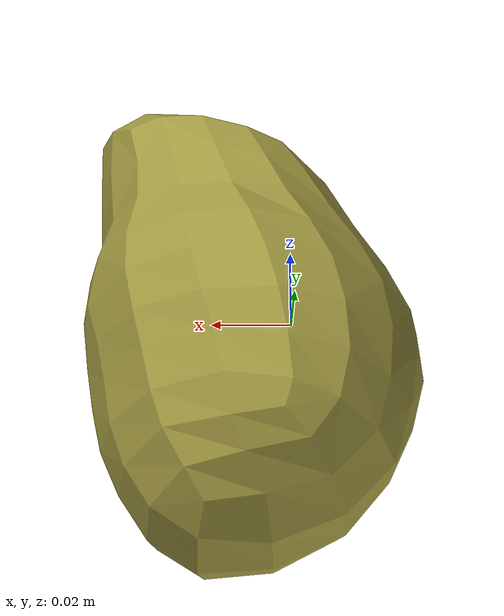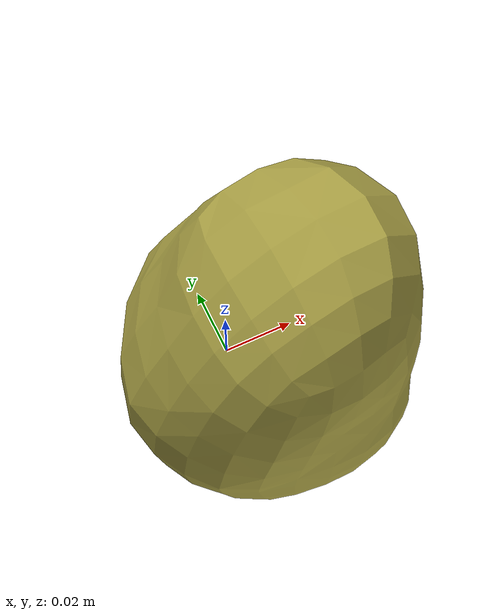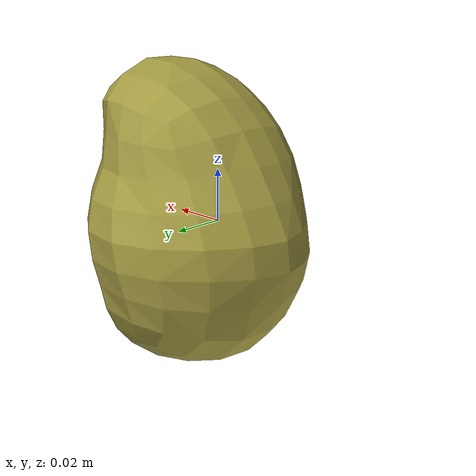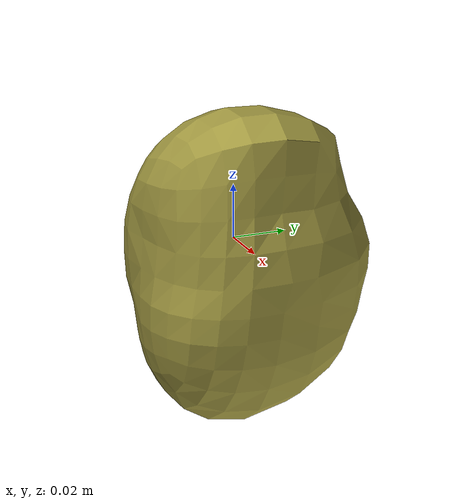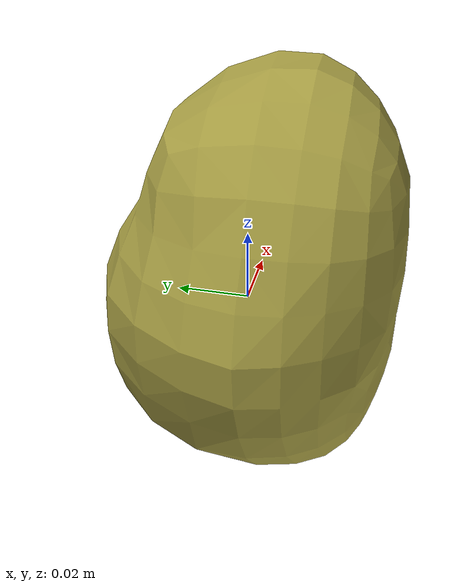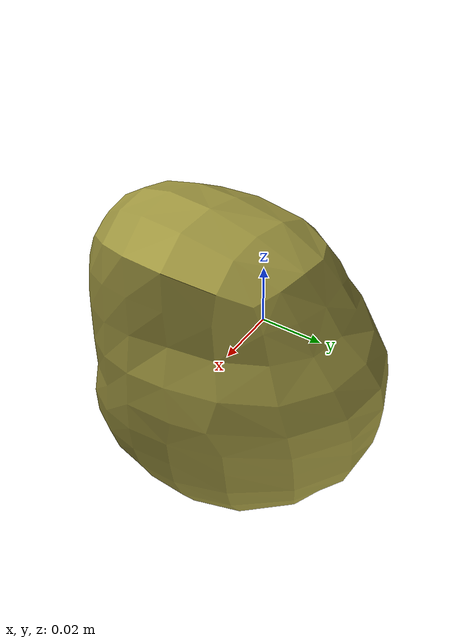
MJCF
<mujoco model="Potato_8">
  <compiler autolimits="true" boundmass="0.01" angle="radian"/>
  <default>
    <default class="/">
      <default class="__VISUAL_MJT__">
        <geom contype="0" conaffinity="0" group="0"/>
      </default>
      <default class="__STRUCTURAL_MJT__">
        <geom contype="8" conaffinity="15" group="4" friction="0.90000000000000002 0.90000000000000002 0.001" solref="0.025000000000000001 1" solimp="0.998 0.998 0.001"/>
      </default>
      <default class="__DYNAMIC_MJT__">
        <geom contype="1" conaffinity="15" group="4" friction="0.90000000000000002 0.90000000000000002 0.001" solref="0.025000000000000001 1" solimp="0.998 0.998 0.001"/>
      </default>
    </default>
  </default>
  <asset>
    <texture name="Potato1_Mat3" type="2d" file="Potato1_AlbedoTransparency.png"/>
    <material name="material_Potato1_Mat3" class="/" texture="Potato1_Mat3" specular="0.5" shininess="0.5" rgba="0.86029409999999995 0.84703200000000001 0.37954149999999998 1"/>
    <mesh name="Potato_8_potato_a8" class="/" file="Potato_8_potato_a8/Potato_8_potato_a8.obj" scale="1 1 1"/>
  </asset>
  <worldbody>
    <body name="Potato_8">
      <joint name="Potato_8_free" class="/" type="free" pos="0 0 0" axis="0 0 1" stiffness="0" range="0 0" armature="0" damping="0.10000000000000001" frictionloss="0"/>
      <body name="Potato_8_potato_a8" pos="0.029129999880790711 0.00051000000000000004 -0.0022200000000000002" quat="1 0 0 0">
        <geom name="Potato_8_potato_a8" class="__VISUAL_MJT__" type="mesh" material="material_Potato1_Mat3" shellinertia="true" mesh="Potato_8_potato_a8"/>
        <geom name="Potato_8_PrimitiveCollider_0" class="__DYNAMIC_MJT__" type="capsule" size="0.040860433131456375 0.01907651498913765" rgba="0 1 0 1" pos="0.0071302470751106739 -0.00051165360491722822 0.0022241123951971531" quat="1.5172865288857374e-06 0.99551040471652508 -0.094652174295248387 1.4224561207393238e-07"/>
      </body>
    </body>
  </worldbody>
</mujoco>
